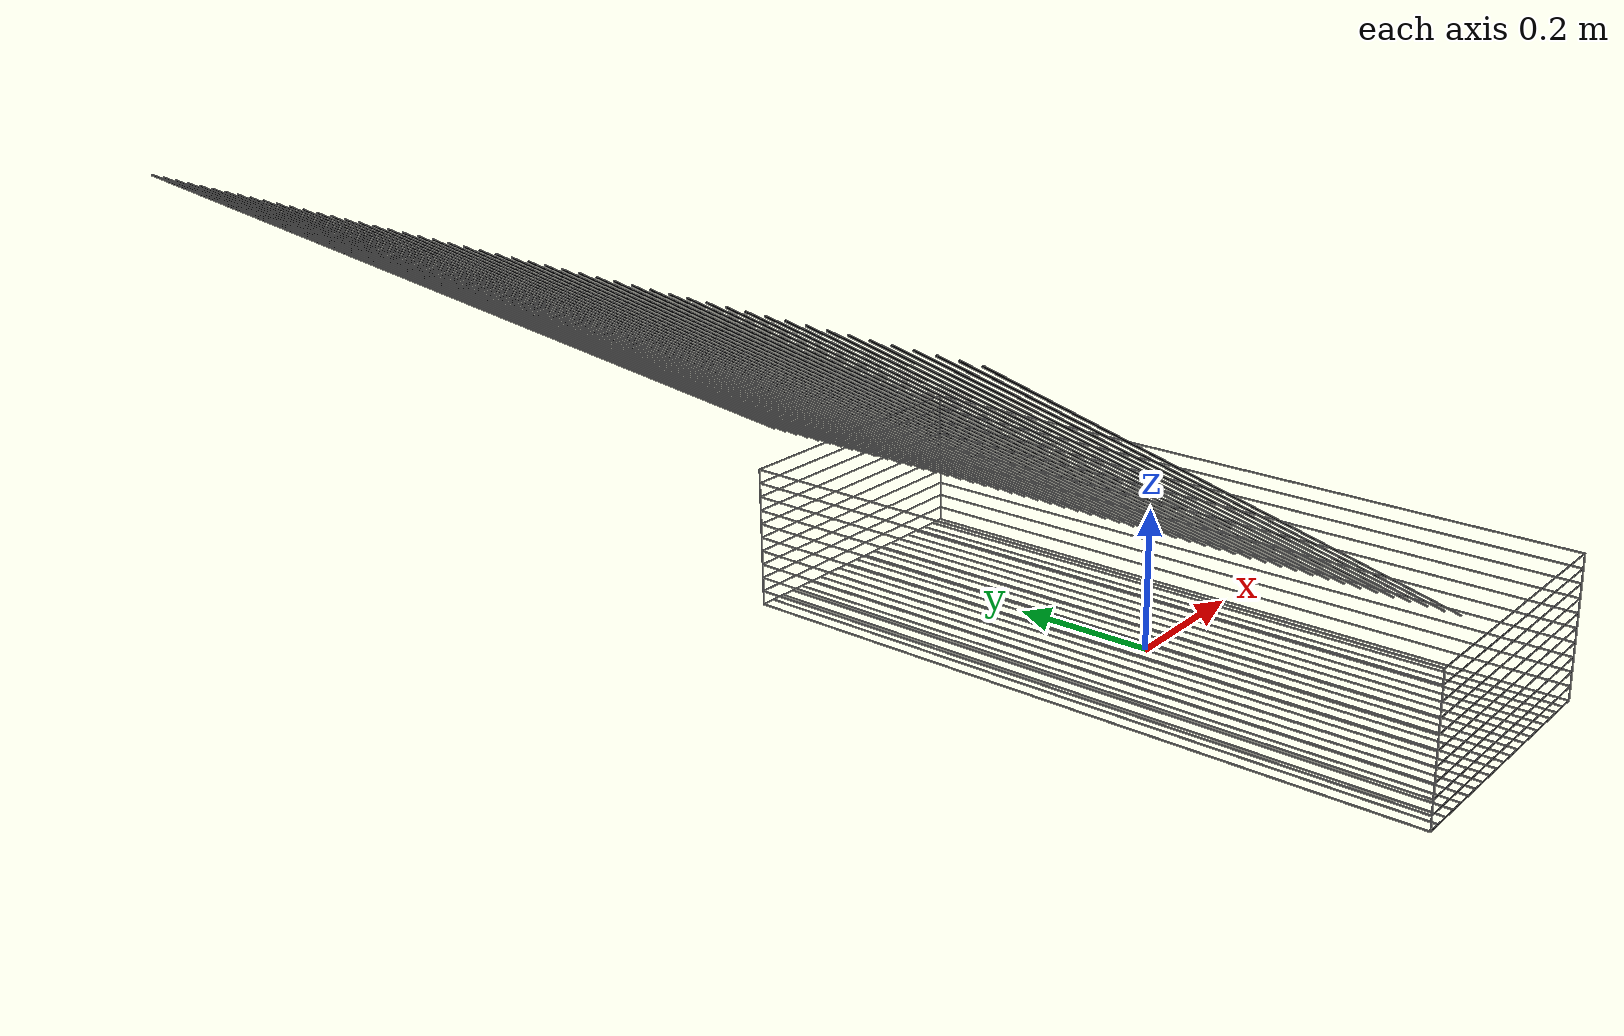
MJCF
<?xml version="1.0"?>
<mujoco model="mesh_crate">
  <!-- A model of crate with walls composed of thin wires. -->

  <default>
    <geom rgba="0.0 0.0 0.0 1.0" friction="0.5"/>
  </default>

  <worldbody>
    <!-- Base -->
    <geom name="base_00" type="cylinder" pos="-0.2 0.0 0.0" euler="90 0 0" size="0.001 0.5" />
    <geom name="base_01" type="cylinder" pos="-0.18 0.0 0.0" euler="90 0 0" size="0.001 0.5" />
    <geom name="base_02" type="cylinder" pos="-0.16 0.0 0.0" euler="90 0 0" size="0.001 0.5" />
    <geom name="base_03" type="cylinder" pos="-0.14 0.0 0.0" euler="90 0 0" size="0.001 0.5" />
    <geom name="base_04" type="cylinder" pos="-0.12 0.0 0.0" euler="90 0 0" size="0.001 0.5" />
    <geom name="base_05" type="cylinder" pos="-0.1 0.0 0.0" euler="90 0 0" size="0.001 0.5" />
    <geom name="base_06" type="cylinder" pos="-0.08 0.0 0.0" euler="90 0 0" size="0.001 0.5" />
    <geom name="base_07" type="cylinder" pos="-0.06 0.0 0.0" euler="90 0 0" size="0.001 0.5" />
    <geom name="base_08" type="cylinder" pos="-0.04 0.0 0.0" euler="90 0 0" size="0.001 0.5" />
    <geom name="base_09" type="cylinder" pos="-0.02 0.0 0.0" euler="90 0 0" size="0.001 0.5" />
    <geom name="base_10" type="cylinder" pos="0.0 0.0 0.0" euler="90 0 0" size="0.001 0.5" />
    <geom name="base_11" type="cylinder" pos="0.02 0.0 0.0" euler="90 0 0" size="0.001 0.5" />
    <geom name="base_12" type="cylinder" pos="0.04 0.0 0.0" euler="90 0 0" size="0.001 0.5" />
    <geom name="base_13" type="cylinder" pos="0.06 0.0 0.0" euler="90 0 0" size="0.001 0.5" />
    <geom name="base_14" type="cylinder" pos="0.08 0.0 0.0" euler="90 0 0" size="0.001 0.5" />
    <geom name="base_15" type="cylinder" pos="0.1 0.0 0.0" euler="90 0 0" size="0.001 0.5" />
    <geom name="base_16" type="cylinder" pos="0.12 0.0 0.0" euler="90 0 0" size="0.001 0.5" />
    <geom name="base_17" type="cylinder" pos="0.14 0.0 0.0" euler="90 0 0" size="0.001 0.5" />
    <geom name="base_18" type="cylinder" pos="0.16 0.0 0.0" euler="90 0 0" size="0.001 0.5" />
    <geom name="base_19" type="cylinder" pos="0.18 0.0 0.0" euler="90 0 0" size="0.001 0.5" />
    <geom name="base_20" type="cylinder" pos="0.2 0.0 0.0" euler="90 0 0" size="0.001 0.5" />

    <!-- Back wall -->
    <geom name="back_00" type="cylinder" pos="0.0 0.5 0.0" euler="0 90 0" size="0.001 0.2" />
    <geom name="back_01" type="cylinder" pos="0.0 0.5 0.02" euler="0 90 0" size="0.001 0.2" />
    <geom name="back_02" type="cylinder" pos="0.0 0.5 0.04" euler="0 90 0" size="0.001 0.2" />
    <geom name="back_03" type="cylinder" pos="0.0 0.5 0.06" euler="0 90 0" size="0.001 0.2" />
    <geom name="back_04" type="cylinder" pos="0.0 0.5 0.08" euler="0 90 0" size="0.001 0.2" />
    <geom name="back_05" type="cylinder" pos="0.0 0.5 0.1" euler="0 90 0" size="0.001 0.2" />
    <geom name="back_06" type="cylinder" pos="0.0 0.5 0.12" euler="0 90 0" size="0.001 0.2" />
    <geom name="back_07" type="cylinder" pos="0.0 0.5 0.14" euler="0 90 0" size="0.001 0.2" />
    <geom name="back_08" type="cylinder" pos="0.0 0.5 0.16" euler="0 90 0" size="0.001 0.2" />
    <geom name="back_09" type="cylinder" pos="0.0 0.5 0.18" euler="0 90 0" size="0.001 0.2" />
    <geom name="back_10" type="cylinder" pos="0.0 0.5 0.2" euler="0 90 0" size="0.001 0.2" />

    <!-- Front wall -->
    <geom name="front_00" type="cylinder" pos="0.0 -0.5 0.0" euler="0 90 0" size="0.001 0.2" />
    <geom name="front_01" type="cylinder" pos="0.0 -0.5 0.02" euler="0 90 0" size="0.001 0.2" />
    <geom name="front_02" type="cylinder" pos="0.0 -0.5 0.04" euler="0 90 0" size="0.001 0.2" />
    <geom name="front_03" type="cylinder" pos="0.0 -0.5 0.06" euler="0 90 0" size="0.001 0.2" />
    <geom name="front_04" type="cylinder" pos="0.0 -0.5 0.08" euler="0 90 0" size="0.001 0.2" />
    <geom name="front_05" type="cylinder" pos="0.0 -0.5 0.1" euler="0 90 0" size="0.001 0.2" />
    <geom name="front_06" type="cylinder" pos="0.0 -0.5 0.12" euler="0 90 0" size="0.001 0.2" />
    <geom name="front_07" type="cylinder" pos="0.0 -0.5 0.14" euler="0 90 0" size="0.001 0.2" />
    <geom name="front_08" type="cylinder" pos="0.0 -0.5 0.16" euler="0 90 0" size="0.001 0.2" />
    <geom name="front_09" type="cylinder" pos="0.0 -0.5 0.18" euler="0 90 0" size="0.001 0.2" />
    <geom name="front_10" type="cylinder" pos="0.0 -0.5 0.2" euler="0 90 0" size="0.001 0.2" />

    <!-- Left wall -->
    <geom name="left_01" type="cylinder" pos="-0.2 0.0 0.02" euler="90 0 0" size="0.001 0.5" />
    <geom name="left_02" type="cylinder" pos="-0.2 0.0 0.04" euler="90 0 0" size="0.001 0.5" />
    <geom name="left_03" type="cylinder" pos="-0.2 0.0 0.06" euler="90 0 0" size="0.001 0.5" />
    <geom name="left_04" type="cylinder" pos="-0.2 0.0 0.08" euler="90 0 0" size="0.001 0.5" />
    <geom name="left_05" type="cylinder" pos="-0.2 0.0 0.1" euler="90 0 0" size="0.001 0.5" />
    <geom name="left_06" type="cylinder" pos="-0.2 0.0 0.12" euler="90 0 0" size="0.001 0.5" />
    <geom name="left_07" type="cylinder" pos="-0.2 0.0 0.14" euler="90 0 0" size="0.001 0.5" />
    <geom name="left_08" type="cylinder" pos="-0.2 0.0 0.16" euler="90 0 0" size="0.001 0.5" />
    <geom name="left_09" type="cylinder" pos="-0.2 0.0 0.18" euler="90 0 0" size="0.001 0.5" />
    <geom name="left_10" type="cylinder" pos="-0.2 0.0 0.2" euler="90 0 0" size="0.001 0.5" />

    <!-- Right wall -->
    <geom name="right_01" type="cylinder" pos="0.2 0.0 0.02" euler="90 0 0" size="0.001 0.5" />
    <geom name="right_02" type="cylinder" pos="0.2 0.0 0.04" euler="90 0 0" size="0.001 0.5" />
    <geom name="right_03" type="cylinder" pos="0.2 0.0 0.06" euler="90 0 0" size="0.001 0.5" />
    <geom name="right_04" type="cylinder" pos="0.2 0.0 0.08" euler="90 0 0" size="0.001 0.5" />
    <geom name="right_05" type="cylinder" pos="0.2 0.0 0.1" euler="90 0 0" size="0.001 0.5" />
    <geom name="right_06" type="cylinder" pos="0.2 0.0 0.12" euler="90 0 0" size="0.001 0.5" />
    <geom name="right_07" type="cylinder" pos="0.2 0.0 0.14" euler="90 0 0" size="0.001 0.5" />
    <geom name="right_08" type="cylinder" pos="0.2 0.0 0.16" euler="90 0 0" size="0.001 0.5" />
    <geom name="right_09" type="cylinder" pos="0.2 0.0 0.18" euler="90 0 0" size="0.001 0.5" />
    <geom name="right_10" type="cylinder" pos="0.2 0.0 0.2" euler="90 0 0" size="0.001 0.5" />

    <!-- Vertical bars at the corners -->
    <geom name="corner_00" type="cylinder" pos="-0.2 0.5 0.1" euler="0 0 0" size="0.001 0.1" />
    <geom name="corner_01" type="cylinder" pos="-0.2 -0.5 0.1" euler="0 0 0" size="0.001 0.1" />
    <geom name="corner_02" type="cylinder" pos="0.2 0.5 0.1" euler="0 0 0" size="0.001 0.1" />
    <geom name="corner_03" type="cylinder" pos="0.2 -0.5 0.1" euler="0 0 0" size="0.001 0.1" />

    <!-- Sloped wall for objects to roll/slide down -->
    <geom name="slope_00" type="cylinder" pos="-0.6 -0.5 0.5" euler="0 -60 0" size="0.001 0.5" />
    <geom name="slope_01" type="cylinder" pos="-0.6 -0.48 0.5" euler="0 -60 0" size="0.001 0.5" />
    <geom name="slope_02" type="cylinder" pos="-0.6 -0.46 0.5" euler="0 -60 0" size="0.001 0.5" />
    <geom name="slope_03" type="cylinder" pos="-0.6 -0.44 0.5" euler="0 -60 0" size="0.001 0.5" />
    <geom name="slope_04" type="cylinder" pos="-0.6 -0.42 0.5" euler="0 -60 0" size="0.001 0.5" />
    <geom name="slope_05" type="cylinder" pos="-0.6 -0.4 0.5" euler="0 -60 0" size="0.001 0.5" />
    <geom name="slope_06" type="cylinder" pos="-0.6 -0.38 0.5" euler="0 -60 0" size="0.001 0.5" />
    <geom name="slope_07" type="cylinder" pos="-0.6 -0.36 0.5" euler="0 -60 0" size="0.001 0.5" />
    <geom name="slope_08" type="cylinder" pos="-0.6 -0.34 0.5" euler="0 -60 0" size="0.001 0.5" />
    <geom name="slope_09" type="cylinder" pos="-0.6 -0.32 0.5" euler="0 -60 0" size="0.001 0.5" />
    <geom name="slope_10" type="cylinder" pos="-0.6 -0.3 0.5" euler="0 -60 0" size="0.001 0.5" />
    <geom name="slope_11" type="cylinder" pos="-0.6 -0.28 0.5" euler="0 -60 0" size="0.001 0.5" />
    <geom name="slope_12" type="cylinder" pos="-0.6 -0.26 0.5" euler="0 -60 0" size="0.001 0.5" />
    <geom name="slope_13" type="cylinder" pos="-0.6 -0.24 0.5" euler="0 -60 0" size="0.001 0.5" />
    <geom name="slope_14" type="cylinder" pos="-0.6 -0.22 0.5" euler="0 -60 0" size="0.001 0.5" />
    <geom name="slope_15" type="cylinder" pos="-0.6 -0.2 0.5" euler="0 -60 0" size="0.001 0.5" />
    <geom name="slope_16" type="cylinder" pos="-0.6 -0.18 0.5" euler="0 -60 0" size="0.001 0.5" />
    <geom name="slope_17" type="cylinder" pos="-0.6 -0.16 0.5" euler="0 -60 0" size="0.001 0.5" />
    <geom name="slope_18" type="cylinder" pos="-0.6 -0.14 0.5" euler="0 -60 0" size="0.001 0.5" />
    <geom name="slope_19" type="cylinder" pos="-0.6 -0.12 0.5" euler="0 -60 0" size="0.001 0.5" />
    <geom name="slope_20" type="cylinder" pos="-0.6 -0.1 0.5" euler="0 -60 0" size="0.001 0.5" />
    <geom name="slope_21" type="cylinder" pos="-0.6 -0.08 0.5" euler="0 -60 0" size="0.001 0.5" />
    <geom name="slope_22" type="cylinder" pos="-0.6 -0.06 0.5" euler="0 -60 0" size="0.001 0.5" />
    <geom name="slope_23" type="cylinder" pos="-0.6 -0.04 0.5" euler="0 -60 0" size="0.001 0.5" />
    <geom name="slope_24" type="cylinder" pos="-0.6 -0.02 0.5" euler="0 -60 0" size="0.001 0.5" />
    <geom name="slope_25" type="cylinder" pos="-0.6 0.0 0.5" euler="0 -60 0" size="0.001 0.5" />
    <geom name="slope_26" type="cylinder" pos="-0.6 0.02 0.5" euler="0 -60 0" size="0.001 0.5" />
    <geom name="slope_27" type="cylinder" pos="-0.6 0.04 0.5" euler="0 -60 0" size="0.001 0.5" />
    <geom name="slope_28" type="cylinder" pos="-0.6 0.06 0.5" euler="0 -60 0" size="0.001 0.5" />
    <geom name="slope_29" type="cylinder" pos="-0.6 0.08 0.5" euler="0 -60 0" size="0.001 0.5" />
    <geom name="slope_30" type="cylinder" pos="-0.6 0.1 0.5" euler="0 -60 0" size="0.001 0.5" />
    <geom name="slope_31" type="cylinder" pos="-0.6 0.12 0.5" euler="0 -60 0" size="0.001 0.5" />
    <geom name="slope_32" type="cylinder" pos="-0.6 0.14 0.5" euler="0 -60 0" size="0.001 0.5" />
    <geom name="slope_33" type="cylinder" pos="-0.6 0.16 0.5" euler="0 -60 0" size="0.001 0.5" />
    <geom name="slope_34" type="cylinder" pos="-0.6 0.18 0.5" euler="0 -60 0" size="0.001 0.5" />
    <geom name="slope_35" type="cylinder" pos="-0.6 0.2 0.5" euler="0 -60 0" size="0.001 0.5" />
    <geom name="slope_36" type="cylinder" pos="-0.6 0.22 0.5" euler="0 -60 0" size="0.001 0.5" />
    <geom name="slope_37" type="cylinder" pos="-0.6 0.24 0.5" euler="0 -60 0" size="0.001 0.5" />
    <geom name="slope_38" type="cylinder" pos="-0.6 0.26 0.5" euler="0 -60 0" size="0.001 0.5" />
    <geom name="slope_39" type="cylinder" pos="-0.6 0.28 0.5" euler="0 -60 0" size="0.001 0.5" />
    <geom name="slope_40" type="cylinder" pos="-0.6 0.3 0.5" euler="0 -60 0" size="0.001 0.5" />
    <geom name="slope_41" type="cylinder" pos="-0.6 0.32 0.5" euler="0 -60 0" size="0.001 0.5" />
    <geom name="slope_42" type="cylinder" pos="-0.6 0.34 0.5" euler="0 -60 0" size="0.001 0.5" />
    <geom name="slope_43" type="cylinder" pos="-0.6 0.36 0.5" euler="0 -60 0" size="0.001 0.5" />
    <geom name="slope_44" type="cylinder" pos="-0.6 0.38 0.5" euler="0 -60 0" size="0.001 0.5" />
    <geom name="slope_45" type="cylinder" pos="-0.6 0.4 0.5" euler="0 -60 0" size="0.001 0.5" />
    <geom name="slope_46" type="cylinder" pos="-0.6 0.42 0.5" euler="0 -60 0" size="0.001 0.5" />
    <geom name="slope_47" type="cylinder" pos="-0.6 0.44 0.5" euler="0 -60 0" size="0.001 0.5" />
    <geom name="slope_48" type="cylinder" pos="-0.6 0.46 0.5" euler="0 -60 0" size="0.001 0.5" />
    <geom name="slope_49" type="cylinder" pos="-0.6 0.48 0.5" euler="0 -60 0" size="0.001 0.5" />
    <geom name="slope_50" type="cylinder" pos="-0.6 0.5 0.5" euler="0 -60 0" size="0.001 0.5" />
  </worldbody>
</mujoco>
